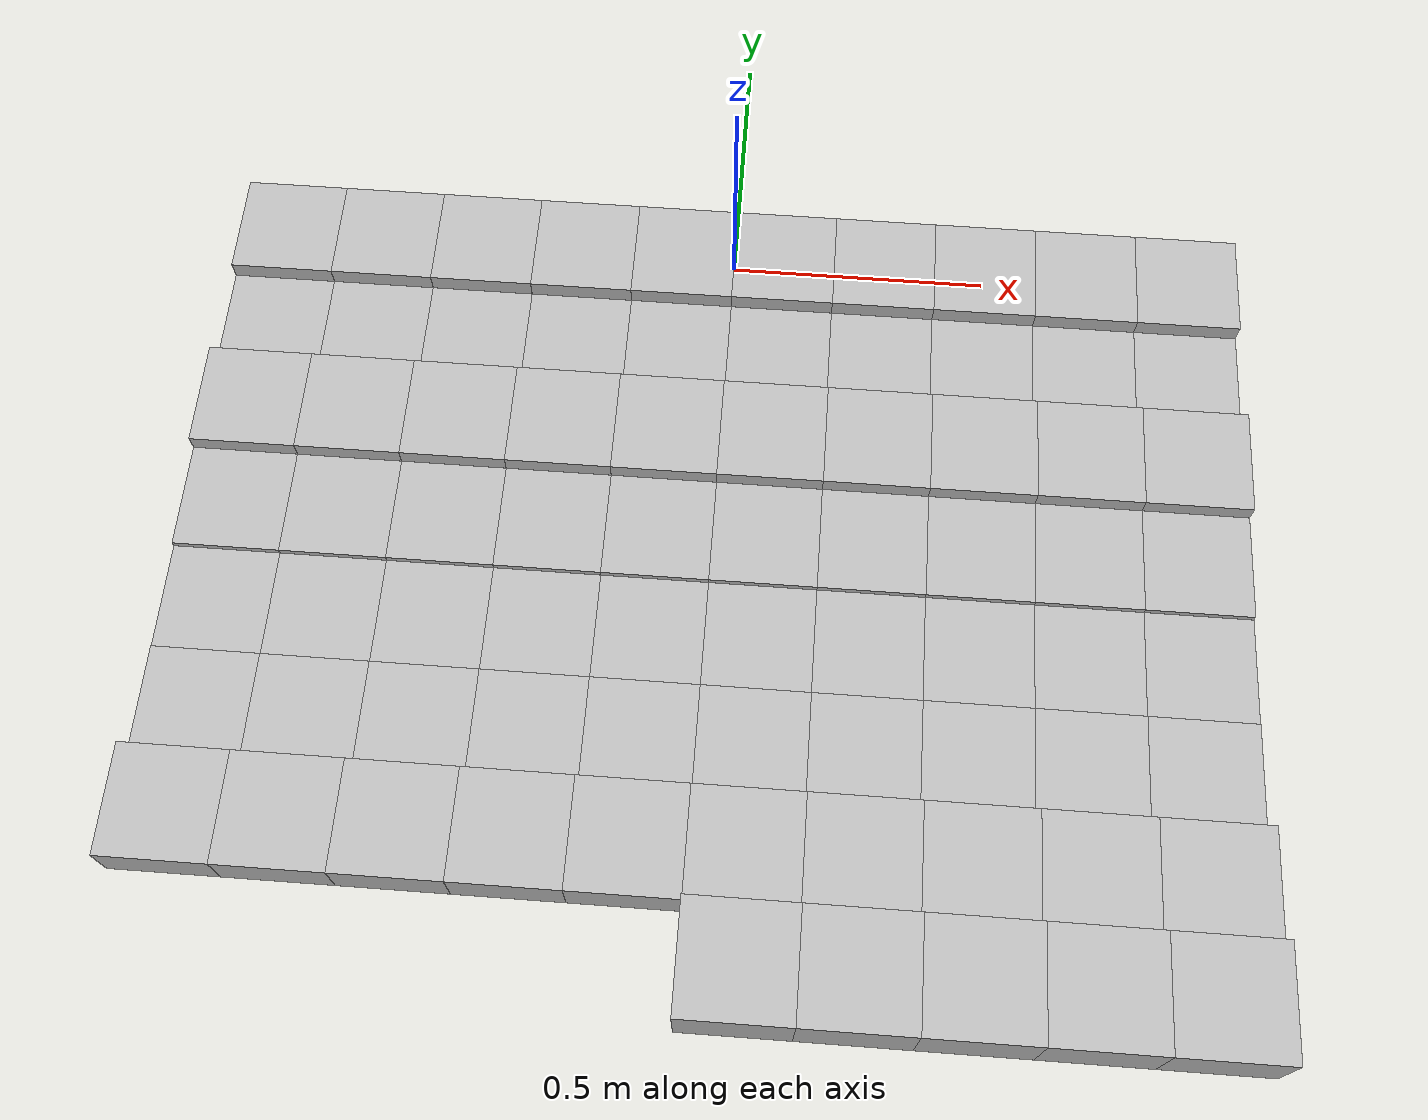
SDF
<sdf version="1.6">
 <model name="Terrain">
  <static>true</static>
  <link name="box_0_0">
   <pose>-0.9 0.0 0.0292652632221 0 0 0</pose>
   <inertial>
    <mass>1.0</mass>
    <inertia><ixx>0.0</ixx><ixy>0.0</ixy><ixz>0.0</ixz><iyy>0.0</iyy><iyz>0.0</iyz><izz>0.0</izz></inertia>
   </inertial>
   <collision name="collision"><geometry><box><size>0.2 0.2 0.0585305264443</size></box></geometry></collision>
   <visual name="visual"><geometry><box><size>0.2 0.2 0.0585305264443</size></box></geometry></visual>
  </link>
  <link name="box_0_1">
   <pose>-0.7 0.0 0.0292652632221 0 0 0</pose>
   <inertial>
    <mass>1.0</mass>
    <inertia><ixx>0.0</ixx><ixy>0.0</ixy><ixz>0.0</ixz><iyy>0.0</iyy><iyz>0.0</iyz><izz>0.0</izz></inertia>
   </inertial>
   <collision name="collision"><geometry><box><size>0.2 0.2 0.0585305264443</size></box></geometry></collision>
   <visual name="visual"><geometry><box><size>0.2 0.2 0.0585305264443</size></box></geometry></visual>
  </link>
  <link name="box_0_2">
   <pose>-0.5 0.0 0.0292652632221 0 0 0</pose>
   <inertial>
    <mass>1.0</mass>
    <inertia><ixx>0.0</ixx><ixy>0.0</ixy><ixz>0.0</ixz><iyy>0.0</iyy><iyz>0.0</iyz><izz>0.0</izz></inertia>
   </inertial>
   <collision name="collision"><geometry><box><size>0.2 0.2 0.0585305264443</size></box></geometry></collision>
   <visual name="visual"><geometry><box><size>0.2 0.2 0.0585305264443</size></box></geometry></visual>
  </link>
  <link name="box_0_3">
   <pose>-0.3 0.0 0.0292652632221 0 0 0</pose>
   <inertial>
    <mass>1.0</mass>
    <inertia><ixx>0.0</ixx><ixy>0.0</ixy><ixz>0.0</ixz><iyy>0.0</iyy><iyz>0.0</iyz><izz>0.0</izz></inertia>
   </inertial>
   <collision name="collision"><geometry><box><size>0.2 0.2 0.0585305264443</size></box></geometry></collision>
   <visual name="visual"><geometry><box><size>0.2 0.2 0.0585305264443</size></box></geometry></visual>
  </link>
  <link name="box_0_4">
   <pose>-0.1 0.0 0.0292652632221 0 0 0</pose>
   <inertial>
    <mass>1.0</mass>
    <inertia><ixx>0.0</ixx><ixy>0.0</ixy><ixz>0.0</ixz><iyy>0.0</iyy><iyz>0.0</iyz><izz>0.0</izz></inertia>
   </inertial>
   <collision name="collision"><geometry><box><size>0.2 0.2 0.0585305264443</size></box></geometry></collision>
   <visual name="visual"><geometry><box><size>0.2 0.2 0.0585305264443</size></box></geometry></visual>
  </link>
  <link name="box_0_5">
   <pose>0.1 0.0 0.0292652632221 0 0 0</pose>
   <inertial>
    <mass>1.0</mass>
    <inertia><ixx>0.0</ixx><ixy>0.0</ixy><ixz>0.0</ixz><iyy>0.0</iyy><iyz>0.0</iyz><izz>0.0</izz></inertia>
   </inertial>
   <collision name="collision"><geometry><box><size>0.2 0.2 0.0585305264443</size></box></geometry></collision>
   <visual name="visual"><geometry><box><size>0.2 0.2 0.0585305264443</size></box></geometry></visual>
  </link>
  <link name="box_0_6">
   <pose>0.3 0.0 0.0292652632221 0 0 0</pose>
   <inertial>
    <mass>1.0</mass>
    <inertia><ixx>0.0</ixx><ixy>0.0</ixy><ixz>0.0</ixz><iyy>0.0</iyy><iyz>0.0</iyz><izz>0.0</izz></inertia>
   </inertial>
   <collision name="collision"><geometry><box><size>0.2 0.2 0.0585305264443</size></box></geometry></collision>
   <visual name="visual"><geometry><box><size>0.2 0.2 0.0585305264443</size></box></geometry></visual>
  </link>
  <link name="box_0_7">
   <pose>0.5 0.0 0.0292652632221 0 0 0</pose>
   <inertial>
    <mass>1.0</mass>
    <inertia><ixx>0.0</ixx><ixy>0.0</ixy><ixz>0.0</ixz><iyy>0.0</iyy><iyz>0.0</iyz><izz>0.0</izz></inertia>
   </inertial>
   <collision name="collision"><geometry><box><size>0.2 0.2 0.0585305264443</size></box></geometry></collision>
   <visual name="visual"><geometry><box><size>0.2 0.2 0.0585305264443</size></box></geometry></visual>
  </link>
  <link name="box_0_8">
   <pose>0.7 0.0 0.0292652632221 0 0 0</pose>
   <inertial>
    <mass>1.0</mass>
    <inertia><ixx>0.0</ixx><ixy>0.0</ixy><ixz>0.0</ixz><iyy>0.0</iyy><iyz>0.0</iyz><izz>0.0</izz></inertia>
   </inertial>
   <collision name="collision"><geometry><box><size>0.2 0.2 0.0585305264443</size></box></geometry></collision>
   <visual name="visual"><geometry><box><size>0.2 0.2 0.0585305264443</size></box></geometry></visual>
  </link>
  <link name="box_0_9">
   <pose>0.9 0.0 0.0292652632221 0 0 0</pose>
   <inertial>
    <mass>1.0</mass>
    <inertia><ixx>0.0</ixx><ixy>0.0</ixy><ixz>0.0</ixz><iyy>0.0</iyy><iyz>0.0</iyz><izz>0.0</izz></inertia>
   </inertial>
   <collision name="collision"><geometry><box><size>0.2 0.2 0.0585305264443</size></box></geometry></collision>
   <visual name="visual"><geometry><box><size>0.2 0.2 0.0585305264443</size></box></geometry></visual>
  </link>
  <link name="box_1_0">
   <pose>-0.9 -0.2 0.0103565655767 0 0 0</pose>
   <inertial>
    <mass>1.0</mass>
    <inertia><ixx>0.0</ixx><ixy>0.0</ixy><ixz>0.0</ixz><iyy>0.0</iyy><iyz>0.0</iyz><izz>0.0</izz></inertia>
   </inertial>
   <collision name="collision"><geometry><box><size>0.2 0.2 0.0207131311533</size></box></geometry></collision>
   <visual name="visual"><geometry><box><size>0.2 0.2 0.0207131311533</size></box></geometry></visual>
  </link>
  <link name="box_1_1">
   <pose>-0.7 -0.2 0.0103565655767 0 0 0</pose>
   <inertial>
    <mass>1.0</mass>
    <inertia><ixx>0.0</ixx><ixy>0.0</ixy><ixz>0.0</ixz><iyy>0.0</iyy><iyz>0.0</iyz><izz>0.0</izz></inertia>
   </inertial>
   <collision name="collision"><geometry><box><size>0.2 0.2 0.0207131311533</size></box></geometry></collision>
   <visual name="visual"><geometry><box><size>0.2 0.2 0.0207131311533</size></box></geometry></visual>
  </link>
  <link name="box_1_2">
   <pose>-0.5 -0.2 0.0103565655767 0 0 0</pose>
   <inertial>
    <mass>1.0</mass>
    <inertia><ixx>0.0</ixx><ixy>0.0</ixy><ixz>0.0</ixz><iyy>0.0</iyy><iyz>0.0</iyz><izz>0.0</izz></inertia>
   </inertial>
   <collision name="collision"><geometry><box><size>0.2 0.2 0.0207131311533</size></box></geometry></collision>
   <visual name="visual"><geometry><box><size>0.2 0.2 0.0207131311533</size></box></geometry></visual>
  </link>
  <link name="box_1_3">
   <pose>-0.3 -0.2 0.0103565655767 0 0 0</pose>
   <inertial>
    <mass>1.0</mass>
    <inertia><ixx>0.0</ixx><ixy>0.0</ixy><ixz>0.0</ixz><iyy>0.0</iyy><iyz>0.0</iyz><izz>0.0</izz></inertia>
   </inertial>
   <collision name="collision"><geometry><box><size>0.2 0.2 0.0207131311533</size></box></geometry></collision>
   <visual name="visual"><geometry><box><size>0.2 0.2 0.0207131311533</size></box></geometry></visual>
  </link>
  <link name="box_1_4">
   <pose>-0.1 -0.2 0.0103565655767 0 0 0</pose>
   <inertial>
    <mass>1.0</mass>
    <inertia><ixx>0.0</ixx><ixy>0.0</ixy><ixz>0.0</ixz><iyy>0.0</iyy><iyz>0.0</iyz><izz>0.0</izz></inertia>
   </inertial>
   <collision name="collision"><geometry><box><size>0.2 0.2 0.0207131311533</size></box></geometry></collision>
   <visual name="visual"><geometry><box><size>0.2 0.2 0.0207131311533</size></box></geometry></visual>
  </link>
  <link name="box_1_5">
   <pose>0.1 -0.2 0.0103565655767 0 0 0</pose>
   <inertial>
    <mass>1.0</mass>
    <inertia><ixx>0.0</ixx><ixy>0.0</ixy><ixz>0.0</ixz><iyy>0.0</iyy><iyz>0.0</iyz><izz>0.0</izz></inertia>
   </inertial>
   <collision name="collision"><geometry><box><size>0.2 0.2 0.0207131311533</size></box></geometry></collision>
   <visual name="visual"><geometry><box><size>0.2 0.2 0.0207131311533</size></box></geometry></visual>
  </link>
  <link name="box_1_6">
   <pose>0.3 -0.2 0.0103565655767 0 0 0</pose>
   <inertial>
    <mass>1.0</mass>
    <inertia><ixx>0.0</ixx><ixy>0.0</ixy><ixz>0.0</ixz><iyy>0.0</iyy><iyz>0.0</iyz><izz>0.0</izz></inertia>
   </inertial>
   <collision name="collision"><geometry><box><size>0.2 0.2 0.0207131311533</size></box></geometry></collision>
   <visual name="visual"><geometry><box><size>0.2 0.2 0.0207131311533</size></box></geometry></visual>
  </link>
  <link name="box_1_7">
   <pose>0.5 -0.2 0.0103565655767 0 0 0</pose>
   <inertial>
    <mass>1.0</mass>
    <inertia><ixx>0.0</ixx><ixy>0.0</ixy><ixz>0.0</ixz><iyy>0.0</iyy><iyz>0.0</iyz><izz>0.0</izz></inertia>
   </inertial>
   <collision name="collision"><geometry><box><size>0.2 0.2 0.0207131311533</size></box></geometry></collision>
   <visual name="visual"><geometry><box><size>0.2 0.2 0.0207131311533</size></box></geometry></visual>
  </link>
  <link name="box_1_8">
   <pose>0.7 -0.2 0.0103565655767 0 0 0</pose>
   <inertial>
    <mass>1.0</mass>
    <inertia><ixx>0.0</ixx><ixy>0.0</ixy><ixz>0.0</ixz><iyy>0.0</iyy><iyz>0.0</iyz><izz>0.0</izz></inertia>
   </inertial>
   <collision name="collision"><geometry><box><size>0.2 0.2 0.0207131311533</size></box></geometry></collision>
   <visual name="visual"><geometry><box><size>0.2 0.2 0.0207131311533</size></box></geometry></visual>
  </link>
  <link name="box_1_9">
   <pose>0.9 -0.2 0.0103565655767 0 0 0</pose>
   <inertial>
    <mass>1.0</mass>
    <inertia><ixx>0.0</ixx><ixy>0.0</ixy><ixz>0.0</ixz><iyy>0.0</iyy><iyz>0.0</iyz><izz>0.0</izz></inertia>
   </inertial>
   <collision name="collision"><geometry><box><size>0.2 0.2 0.0207131311533</size></box></geometry></collision>
   <visual name="visual"><geometry><box><size>0.2 0.2 0.0207131311533</size></box></geometry></visual>
  </link>
  <link name="box_2_0">
   <pose>-0.9 -0.4 0.0378009795882 0 0 0</pose>
   <inertial>
    <mass>1.0</mass>
    <inertia><ixx>0.0</ixx><ixy>0.0</ixy><ixz>0.0</ixz><iyy>0.0</iyy><iyz>0.0</iyz><izz>0.0</izz></inertia>
   </inertial>
   <collision name="collision"><geometry><box><size>0.2 0.2 0.0756019591763</size></box></geometry></collision>
   <visual name="visual"><geometry><box><size>0.2 0.2 0.0756019591763</size></box></geometry></visual>
  </link>
  <link name="box_2_1">
   <pose>-0.7 -0.4 0.0378009795882 0 0 0</pose>
   <inertial>
    <mass>1.0</mass>
    <inertia><ixx>0.0</ixx><ixy>0.0</ixy><ixz>0.0</ixz><iyy>0.0</iyy><iyz>0.0</iyz><izz>0.0</izz></inertia>
   </inertial>
   <collision name="collision"><geometry><box><size>0.2 0.2 0.0756019591763</size></box></geometry></collision>
   <visual name="visual"><geometry><box><size>0.2 0.2 0.0756019591763</size></box></geometry></visual>
  </link>
  <link name="box_2_2">
   <pose>-0.5 -0.4 0.0378009795882 0 0 0</pose>
   <inertial>
    <mass>1.0</mass>
    <inertia><ixx>0.0</ixx><ixy>0.0</ixy><ixz>0.0</ixz><iyy>0.0</iyy><iyz>0.0</iyz><izz>0.0</izz></inertia>
   </inertial>
   <collision name="collision"><geometry><box><size>0.2 0.2 0.0756019591763</size></box></geometry></collision>
   <visual name="visual"><geometry><box><size>0.2 0.2 0.0756019591763</size></box></geometry></visual>
  </link>
  <link name="box_2_3">
   <pose>-0.3 -0.4 0.0378009795882 0 0 0</pose>
   <inertial>
    <mass>1.0</mass>
    <inertia><ixx>0.0</ixx><ixy>0.0</ixy><ixz>0.0</ixz><iyy>0.0</iyy><iyz>0.0</iyz><izz>0.0</izz></inertia>
   </inertial>
   <collision name="collision"><geometry><box><size>0.2 0.2 0.0756019591763</size></box></geometry></collision>
   <visual name="visual"><geometry><box><size>0.2 0.2 0.0756019591763</size></box></geometry></visual>
  </link>
  <link name="box_2_4">
   <pose>-0.1 -0.4 0.0378009795882 0 0 0</pose>
   <inertial>
    <mass>1.0</mass>
    <inertia><ixx>0.0</ixx><ixy>0.0</ixy><ixz>0.0</ixz><iyy>0.0</iyy><iyz>0.0</iyz><izz>0.0</izz></inertia>
   </inertial>
   <collision name="collision"><geometry><box><size>0.2 0.2 0.0756019591763</size></box></geometry></collision>
   <visual name="visual"><geometry><box><size>0.2 0.2 0.0756019591763</size></box></geometry></visual>
  </link>
  <link name="box_2_5">
   <pose>0.1 -0.4 0.0378009795882 0 0 0</pose>
   <inertial>
    <mass>1.0</mass>
    <inertia><ixx>0.0</ixx><ixy>0.0</ixy><ixz>0.0</ixz><iyy>0.0</iyy><iyz>0.0</iyz><izz>0.0</izz></inertia>
   </inertial>
   <collision name="collision"><geometry><box><size>0.2 0.2 0.0756019591763</size></box></geometry></collision>
   <visual name="visual"><geometry><box><size>0.2 0.2 0.0756019591763</size></box></geometry></visual>
  </link>
  <link name="box_2_6">
   <pose>0.3 -0.4 0.0378009795882 0 0 0</pose>
   <inertial>
    <mass>1.0</mass>
    <inertia><ixx>0.0</ixx><ixy>0.0</ixy><ixz>0.0</ixz><iyy>0.0</iyy><iyz>0.0</iyz><izz>0.0</izz></inertia>
   </inertial>
   <collision name="collision"><geometry><box><size>0.2 0.2 0.0756019591763</size></box></geometry></collision>
   <visual name="visual"><geometry><box><size>0.2 0.2 0.0756019591763</size></box></geometry></visual>
  </link>
  <link name="box_2_7">
   <pose>0.5 -0.4 0.0378009795882 0 0 0</pose>
   <inertial>
    <mass>1.0</mass>
    <inertia><ixx>0.0</ixx><ixy>0.0</ixy><ixz>0.0</ixz><iyy>0.0</iyy><iyz>0.0</iyz><izz>0.0</izz></inertia>
   </inertial>
   <collision name="collision"><geometry><box><size>0.2 0.2 0.0756019591763</size></box></geometry></collision>
   <visual name="visual"><geometry><box><size>0.2 0.2 0.0756019591763</size></box></geometry></visual>
  </link>
  <link name="box_2_8">
   <pose>0.7 -0.4 0.0378009795882 0 0 0</pose>
   <inertial>
    <mass>1.0</mass>
    <inertia><ixx>0.0</ixx><ixy>0.0</ixy><ixz>0.0</ixz><iyy>0.0</iyy><iyz>0.0</iyz><izz>0.0</izz></inertia>
   </inertial>
   <collision name="collision"><geometry><box><size>0.2 0.2 0.0756019591763</size></box></geometry></collision>
   <visual name="visual"><geometry><box><size>0.2 0.2 0.0756019591763</size></box></geometry></visual>
  </link>
  <link name="box_2_9">
   <pose>0.9 -0.4 0.0378009795882 0 0 0</pose>
   <inertial>
    <mass>1.0</mass>
    <inertia><ixx>0.0</ixx><ixy>0.0</ixy><ixz>0.0</ixz><iyy>0.0</iyy><iyz>0.0</iyz><izz>0.0</izz></inertia>
   </inertial>
   <collision name="collision"><geometry><box><size>0.2 0.2 0.0756019591763</size></box></geometry></collision>
   <visual name="visual"><geometry><box><size>0.2 0.2 0.0756019591763</size></box></geometry></visual>
  </link>
  <link name="box_3_0">
   <pose>-0.9 -0.6 0.020020709092 0 0 0</pose>
   <inertial>
    <mass>1.0</mass>
    <inertia><ixx>0.0</ixx><ixy>0.0</ixy><ixz>0.0</ixz><iyy>0.0</iyy><iyz>0.0</iyz><izz>0.0</izz></inertia>
   </inertial>
   <collision name="collision"><geometry><box><size>0.2 0.2 0.040041418184</size></box></geometry></collision>
   <visual name="visual"><geometry><box><size>0.2 0.2 0.040041418184</size></box></geometry></visual>
  </link>
  <link name="box_3_1">
   <pose>-0.7 -0.6 0.020020709092 0 0 0</pose>
   <inertial>
    <mass>1.0</mass>
    <inertia><ixx>0.0</ixx><ixy>0.0</ixy><ixz>0.0</ixz><iyy>0.0</iyy><iyz>0.0</iyz><izz>0.0</izz></inertia>
   </inertial>
   <collision name="collision"><geometry><box><size>0.2 0.2 0.040041418184</size></box></geometry></collision>
   <visual name="visual"><geometry><box><size>0.2 0.2 0.040041418184</size></box></geometry></visual>
  </link>
  <link name="box_3_2">
   <pose>-0.5 -0.6 0.020020709092 0 0 0</pose>
   <inertial>
    <mass>1.0</mass>
    <inertia><ixx>0.0</ixx><ixy>0.0</ixy><ixz>0.0</ixz><iyy>0.0</iyy><iyz>0.0</iyz><izz>0.0</izz></inertia>
   </inertial>
   <collision name="collision"><geometry><box><size>0.2 0.2 0.040041418184</size></box></geometry></collision>
   <visual name="visual"><geometry><box><size>0.2 0.2 0.040041418184</size></box></geometry></visual>
  </link>
  <link name="box_3_3">
   <pose>-0.3 -0.6 0.020020709092 0 0 0</pose>
   <inertial>
    <mass>1.0</mass>
    <inertia><ixx>0.0</ixx><ixy>0.0</ixy><ixz>0.0</ixz><iyy>0.0</iyy><iyz>0.0</iyz><izz>0.0</izz></inertia>
   </inertial>
   <collision name="collision"><geometry><box><size>0.2 0.2 0.040041418184</size></box></geometry></collision>
   <visual name="visual"><geometry><box><size>0.2 0.2 0.040041418184</size></box></geometry></visual>
  </link>
  <link name="box_3_4">
   <pose>-0.1 -0.6 0.020020709092 0 0 0</pose>
   <inertial>
    <mass>1.0</mass>
    <inertia><ixx>0.0</ixx><ixy>0.0</ixy><ixz>0.0</ixz><iyy>0.0</iyy><iyz>0.0</iyz><izz>0.0</izz></inertia>
   </inertial>
   <collision name="collision"><geometry><box><size>0.2 0.2 0.040041418184</size></box></geometry></collision>
   <visual name="visual"><geometry><box><size>0.2 0.2 0.040041418184</size></box></geometry></visual>
  </link>
  <link name="box_3_5">
   <pose>0.1 -0.6 0.020020709092 0 0 0</pose>
   <inertial>
    <mass>1.0</mass>
    <inertia><ixx>0.0</ixx><ixy>0.0</ixy><ixz>0.0</ixz><iyy>0.0</iyy><iyz>0.0</iyz><izz>0.0</izz></inertia>
   </inertial>
   <collision name="collision"><geometry><box><size>0.2 0.2 0.040041418184</size></box></geometry></collision>
   <visual name="visual"><geometry><box><size>0.2 0.2 0.040041418184</size></box></geometry></visual>
  </link>
  <link name="box_3_6">
   <pose>0.3 -0.6 0.020020709092 0 0 0</pose>
   <inertial>
    <mass>1.0</mass>
    <inertia><ixx>0.0</ixx><ixy>0.0</ixy><ixz>0.0</ixz><iyy>0.0</iyy><iyz>0.0</iyz><izz>0.0</izz></inertia>
   </inertial>
   <collision name="collision"><geometry><box><size>0.2 0.2 0.040041418184</size></box></geometry></collision>
   <visual name="visual"><geometry><box><size>0.2 0.2 0.040041418184</size></box></geometry></visual>
  </link>
  <link name="box_3_7">
   <pose>0.5 -0.6 0.020020709092 0 0 0</pose>
   <inertial>
    <mass>1.0</mass>
    <inertia><ixx>0.0</ixx><ixy>0.0</ixy><ixz>0.0</ixz><iyy>0.0</iyy><iyz>0.0</iyz><izz>0.0</izz></inertia>
   </inertial>
   <collision name="collision"><geometry><box><size>0.2 0.2 0.040041418184</size></box></geometry></collision>
   <visual name="visual"><geometry><box><size>0.2 0.2 0.040041418184</size></box></geometry></visual>
  </link>
  <link name="box_3_8">
   <pose>0.7 -0.6 0.020020709092 0 0 0</pose>
   <inertial>
    <mass>1.0</mass>
    <inertia><ixx>0.0</ixx><ixy>0.0</ixy><ixz>0.0</ixz><iyy>0.0</iyy><iyz>0.0</iyz><izz>0.0</izz></inertia>
   </inertial>
   <collision name="collision"><geometry><box><size>0.2 0.2 0.040041418184</size></box></geometry></collision>
   <visual name="visual"><geometry><box><size>0.2 0.2 0.040041418184</size></box></geometry></visual>
  </link>
  <link name="box_3_9">
   <pose>0.9 -0.6 0.020020709092 0 0 0</pose>
   <inertial>
    <mass>1.0</mass>
    <inertia><ixx>0.0</ixx><ixy>0.0</ixy><ixz>0.0</ixz><iyy>0.0</iyy><iyz>0.0</iyz><izz>0.0</izz></inertia>
   </inertial>
   <collision name="collision"><geometry><box><size>0.2 0.2 0.040041418184</size></box></geometry></collision>
   <visual name="visual"><geometry><box><size>0.2 0.2 0.040041418184</size></box></geometry></visual>
  </link>
  <link name="box_4_0">
   <pose>-0.9 -0.8 0.0135634962556 0 0 0</pose>
   <inertial>
    <mass>1.0</mass>
    <inertia><ixx>0.0</ixx><ixy>0.0</ixy><ixz>0.0</ixz><iyy>0.0</iyy><iyz>0.0</iyz><izz>0.0</izz></inertia>
   </inertial>
   <collision name="collision"><geometry><box><size>0.2 0.2 0.0271269925111</size></box></geometry></collision>
   <visual name="visual"><geometry><box><size>0.2 0.2 0.0271269925111</size></box></geometry></visual>
  </link>
  <link name="box_4_1">
   <pose>-0.7 -0.8 0.0135634962556 0 0 0</pose>
   <inertial>
    <mass>1.0</mass>
    <inertia><ixx>0.0</ixx><ixy>0.0</ixy><ixz>0.0</ixz><iyy>0.0</iyy><iyz>0.0</iyz><izz>0.0</izz></inertia>
   </inertial>
   <collision name="collision"><geometry><box><size>0.2 0.2 0.0271269925111</size></box></geometry></collision>
   <visual name="visual"><geometry><box><size>0.2 0.2 0.0271269925111</size></box></geometry></visual>
  </link>
  <link name="box_4_2">
   <pose>-0.5 -0.8 0.0135634962556 0 0 0</pose>
   <inertial>
    <mass>1.0</mass>
    <inertia><ixx>0.0</ixx><ixy>0.0</ixy><ixz>0.0</ixz><iyy>0.0</iyy><iyz>0.0</iyz><izz>0.0</izz></inertia>
   </inertial>
   <collision name="collision"><geometry><box><size>0.2 0.2 0.0271269925111</size></box></geometry></collision>
   <visual name="visual"><geometry><box><size>0.2 0.2 0.0271269925111</size></box></geometry></visual>
  </link>
  <link name="box_4_3">
   <pose>-0.3 -0.8 0.0135634962556 0 0 0</pose>
   <inertial>
    <mass>1.0</mass>
    <inertia><ixx>0.0</ixx><ixy>0.0</ixy><ixz>0.0</ixz><iyy>0.0</iyy><iyz>0.0</iyz><izz>0.0</izz></inertia>
   </inertial>
   <collision name="collision"><geometry><box><size>0.2 0.2 0.0271269925111</size></box></geometry></collision>
   <visual name="visual"><geometry><box><size>0.2 0.2 0.0271269925111</size></box></geometry></visual>
  </link>
  <link name="box_4_4">
   <pose>-0.1 -0.8 0.0135634962556 0 0 0</pose>
   <inertial>
    <mass>1.0</mass>
    <inertia><ixx>0.0</ixx><ixy>0.0</ixy><ixz>0.0</ixz><iyy>0.0</iyy><iyz>0.0</iyz><izz>0.0</izz></inertia>
   </inertial>
   <collision name="collision"><geometry><box><size>0.2 0.2 0.0271269925111</size></box></geometry></collision>
   <visual name="visual"><geometry><box><size>0.2 0.2 0.0271269925111</size></box></geometry></visual>
  </link>
  <link name="box_4_5">
   <pose>0.1 -0.8 0.0135634962556 0 0 0</pose>
   <inertial>
    <mass>1.0</mass>
    <inertia><ixx>0.0</ixx><ixy>0.0</ixy><ixz>0.0</ixz><iyy>0.0</iyy><iyz>0.0</iyz><izz>0.0</izz></inertia>
   </inertial>
   <collision name="collision"><geometry><box><size>0.2 0.2 0.0271269925111</size></box></geometry></collision>
   <visual name="visual"><geometry><box><size>0.2 0.2 0.0271269925111</size></box></geometry></visual>
  </link>
  <link name="box_4_6">
   <pose>0.3 -0.8 0.0135634962556 0 0 0</pose>
   <inertial>
    <mass>1.0</mass>
    <inertia><ixx>0.0</ixx><ixy>0.0</ixy><ixz>0.0</ixz><iyy>0.0</iyy><iyz>0.0</iyz><izz>0.0</izz></inertia>
   </inertial>
   <collision name="collision"><geometry><box><size>0.2 0.2 0.0271269925111</size></box></geometry></collision>
   <visual name="visual"><geometry><box><size>0.2 0.2 0.0271269925111</size></box></geometry></visual>
  </link>
  <link name="box_4_7">
   <pose>0.5 -0.8 0.0135634962556 0 0 0</pose>
   <inertial>
    <mass>1.0</mass>
    <inertia><ixx>0.0</ixx><ixy>0.0</ixy><ixz>0.0</ixz><iyy>0.0</iyy><iyz>0.0</iyz><izz>0.0</izz></inertia>
   </inertial>
   <collision name="collision"><geometry><box><size>0.2 0.2 0.0271269925111</size></box></geometry></collision>
   <visual name="visual"><geometry><box><size>0.2 0.2 0.0271269925111</size></box></geometry></visual>
  </link>
  <link name="box_4_8">
   <pose>0.7 -0.8 0.0135634962556 0 0 0</pose>
   <inertial>
    <mass>1.0</mass>
    <inertia><ixx>0.0</ixx><ixy>0.0</ixy><ixz>0.0</ixz><iyy>0.0</iyy><iyz>0.0</iyz><izz>0.0</izz></inertia>
   </inertial>
   <collision name="collision"><geometry><box><size>0.2 0.2 0.0271269925111</size></box></geometry></collision>
   <visual name="visual"><geometry><box><size>0.2 0.2 0.0271269925111</size></box></geometry></visual>
  </link>
  <link name="box_4_9">
   <pose>0.9 -0.8 0.0135634962556 0 0 0</pose>
   <inertial>
    <mass>1.0</mass>
    <inertia><ixx>0.0</ixx><ixy>0.0</ixy><ixz>0.0</ixz><iyy>0.0</iyy><iyz>0.0</iyz><izz>0.0</izz></inertia>
   </inertial>
   <collision name="collision"><geometry><box><size>0.2 0.2 0.0271269925111</size></box></geometry></collision>
   <visual name="visual"><geometry><box><size>0.2 0.2 0.0271269925111</size></box></geometry></visual>
  </link>
  <link name="box_5_0">
   <pose>-0.9 -1.0 0.015057297449 0 0 0</pose>
   <inertial>
    <mass>1.0</mass>
    <inertia><ixx>0.0</ixx><ixy>0.0</ixy><ixz>0.0</ixz><iyy>0.0</iyy><iyz>0.0</iyz><izz>0.0</izz></inertia>
   </inertial>
   <collision name="collision"><geometry><box><size>0.2 0.2 0.030114594898</size></box></geometry></collision>
   <visual name="visual"><geometry><box><size>0.2 0.2 0.030114594898</size></box></geometry></visual>
  </link>
  <link name="box_5_1">
   <pose>-0.7 -1.0 0.015057297449 0 0 0</pose>
   <inertial>
    <mass>1.0</mass>
    <inertia><ixx>0.0</ixx><ixy>0.0</ixy><ixz>0.0</ixz><iyy>0.0</iyy><iyz>0.0</iyz><izz>0.0</izz></inertia>
   </inertial>
   <collision name="collision"><geometry><box><size>0.2 0.2 0.030114594898</size></box></geometry></collision>
   <visual name="visual"><geometry><box><size>0.2 0.2 0.030114594898</size></box></geometry></visual>
  </link>
  <link name="box_5_2">
   <pose>-0.5 -1.0 0.015057297449 0 0 0</pose>
   <inertial>
    <mass>1.0</mass>
    <inertia><ixx>0.0</ixx><ixy>0.0</ixy><ixz>0.0</ixz><iyy>0.0</iyy><iyz>0.0</iyz><izz>0.0</izz></inertia>
   </inertial>
   <collision name="collision"><geometry><box><size>0.2 0.2 0.030114594898</size></box></geometry></collision>
   <visual name="visual"><geometry><box><size>0.2 0.2 0.030114594898</size></box></geometry></visual>
  </link>
  <link name="box_5_3">
   <pose>-0.3 -1.0 0.015057297449 0 0 0</pose>
   <inertial>
    <mass>1.0</mass>
    <inertia><ixx>0.0</ixx><ixy>0.0</ixy><ixz>0.0</ixz><iyy>0.0</iyy><iyz>0.0</iyz><izz>0.0</izz></inertia>
   </inertial>
   <collision name="collision"><geometry><box><size>0.2 0.2 0.030114594898</size></box></geometry></collision>
   <visual name="visual"><geometry><box><size>0.2 0.2 0.030114594898</size></box></geometry></visual>
  </link>
  <link name="box_5_4">
   <pose>-0.1 -1.0 0.015057297449 0 0 0</pose>
   <inertial>
    <mass>1.0</mass>
    <inertia><ixx>0.0</ixx><ixy>0.0</ixy><ixz>0.0</ixz><iyy>0.0</iyy><iyz>0.0</iyz><izz>0.0</izz></inertia>
   </inertial>
   <collision name="collision"><geometry><box><size>0.2 0.2 0.030114594898</size></box></geometry></collision>
   <visual name="visual"><geometry><box><size>0.2 0.2 0.030114594898</size></box></geometry></visual>
  </link>
  <link name="box_5_5">
   <pose>0.1 -1.0 0.015057297449 0 0 0</pose>
   <inertial>
    <mass>1.0</mass>
    <inertia><ixx>0.0</ixx><ixy>0.0</ixy><ixz>0.0</ixz><iyy>0.0</iyy><iyz>0.0</iyz><izz>0.0</izz></inertia>
   </inertial>
   <collision name="collision"><geometry><box><size>0.2 0.2 0.030114594898</size></box></geometry></collision>
   <visual name="visual"><geometry><box><size>0.2 0.2 0.030114594898</size></box></geometry></visual>
  </link>
  <link name="box_5_6">
   <pose>0.3 -1.0 0.015057297449 0 0 0</pose>
   <inertial>
    <mass>1.0</mass>
    <inertia><ixx>0.0</ixx><ixy>0.0</ixy><ixz>0.0</ixz><iyy>0.0</iyy><iyz>0.0</iyz><izz>0.0</izz></inertia>
   </inertial>
   <collision name="collision"><geometry><box><size>0.2 0.2 0.030114594898</size></box></geometry></collision>
   <visual name="visual"><geometry><box><size>0.2 0.2 0.030114594898</size></box></geometry></visual>
  </link>
  <link name="box_5_7">
   <pose>0.5 -1.0 0.015057297449 0 0 0</pose>
   <inertial>
    <mass>1.0</mass>
    <inertia><ixx>0.0</ixx><ixy>0.0</ixy><ixz>0.0</ixz><iyy>0.0</iyy><iyz>0.0</iyz><izz>0.0</izz></inertia>
   </inertial>
   <collision name="collision"><geometry><box><size>0.2 0.2 0.030114594898</size></box></geometry></collision>
   <visual name="visual"><geometry><box><size>0.2 0.2 0.030114594898</size></box></geometry></visual>
  </link>
  <link name="box_5_8">
   <pose>0.7 -1.0 0.015057297449 0 0 0</pose>
   <inertial>
    <mass>1.0</mass>
    <inertia><ixx>0.0</ixx><ixy>0.0</ixy><ixz>0.0</ixz><iyy>0.0</iyy><iyz>0.0</iyz><izz>0.0</izz></inertia>
   </inertial>
   <collision name="collision"><geometry><box><size>0.2 0.2 0.030114594898</size></box></geometry></collision>
   <visual name="visual"><geometry><box><size>0.2 0.2 0.030114594898</size></box></geometry></visual>
  </link>
  <link name="box_5_9">
   <pose>0.9 -1.0 0.015057297449 0 0 0</pose>
   <inertial>
    <mass>1.0</mass>
    <inertia><ixx>0.0</ixx><ixy>0.0</ixy><ixz>0.0</ixz><iyy>0.0</iyy><iyz>0.0</iyz><izz>0.0</izz></inertia>
   </inertial>
   <collision name="collision"><geometry><box><size>0.2 0.2 0.030114594898</size></box></geometry></collision>
   <visual name="visual"><geometry><box><size>0.2 0.2 0.030114594898</size></box></geometry></visual>
  </link>
  <link name="box_6_0">
   <pose>-0.9 -1.2 0.0458618885374 0 0 0</pose>
   <inertial>
    <mass>1.0</mass>
    <inertia><ixx>0.0</ixx><ixy>0.0</ixy><ixz>0.0</ixz><iyy>0.0</iyy><iyz>0.0</iyz><izz>0.0</izz></inertia>
   </inertial>
   <collision name="collision"><geometry><box><size>0.2 0.2 0.0917237770747</size></box></geometry></collision>
   <visual name="visual"><geometry><box><size>0.2 0.2 0.0917237770747</size></box></geometry></visual>
  </link>
  <link name="box_6_1">
   <pose>-0.7 -1.2 0.0458618885374 0 0 0</pose>
   <inertial>
    <mass>1.0</mass>
    <inertia><ixx>0.0</ixx><ixy>0.0</ixy><ixz>0.0</ixz><iyy>0.0</iyy><iyz>0.0</iyz><izz>0.0</izz></inertia>
   </inertial>
   <collision name="collision"><geometry><box><size>0.2 0.2 0.0917237770747</size></box></geometry></collision>
   <visual name="visual"><geometry><box><size>0.2 0.2 0.0917237770747</size></box></geometry></visual>
  </link>
  <link name="box_6_2">
   <pose>-0.5 -1.2 0.0458618885374 0 0 0</pose>
   <inertial>
    <mass>1.0</mass>
    <inertia><ixx>0.0</ixx><ixy>0.0</ixy><ixz>0.0</ixz><iyy>0.0</iyy><iyz>0.0</iyz><izz>0.0</izz></inertia>
   </inertial>
   <collision name="collision"><geometry><box><size>0.2 0.2 0.0917237770747</size></box></geometry></collision>
   <visual name="visual"><geometry><box><size>0.2 0.2 0.0917237770747</size></box></geometry></visual>
  </link>
  <link name="box_6_3">
   <pose>-0.3 -1.2 0.0458618885374 0 0 0</pose>
   <inertial>
    <mass>1.0</mass>
    <inertia><ixx>0.0</ixx><ixy>0.0</ixy><ixz>0.0</ixz><iyy>0.0</iyy><iyz>0.0</iyz><izz>0.0</izz></inertia>
   </inertial>
   <collision name="collision"><geometry><box><size>0.2 0.2 0.0917237770747</size></box></geometry></collision>
   <visual name="visual"><geometry><box><size>0.2 0.2 0.0917237770747</size></box></geometry></visual>
  </link>
  <link name="box_6_4">
   <pose>-0.1 -1.2 0.0458618885374 0 0 0</pose>
   <inertial>
    <mass>1.0</mass>
    <inertia><ixx>0.0</ixx><ixy>0.0</ixy><ixz>0.0</ixz><iyy>0.0</iyy><iyz>0.0</iyz><izz>0.0</izz></inertia>
   </inertial>
   <collision name="collision"><geometry><box><size>0.2 0.2 0.0917237770747</size></box></geometry></collision>
   <visual name="visual"><geometry><box><size>0.2 0.2 0.0917237770747</size></box></geometry></visual>
  </link>
  <link name="box_6_5">
   <pose>0.1 -1.2 0.0458618885374 0 0 0</pose>
   <inertial>
    <mass>1.0</mass>
    <inertia><ixx>0.0</ixx><ixy>0.0</ixy><ixz>0.0</ixz><iyy>0.0</iyy><iyz>0.0</iyz><izz>0.0</izz></inertia>
   </inertial>
   <collision name="collision"><geometry><box><size>0.2 0.2 0.0917237770747</size></box></geometry></collision>
   <visual name="visual"><geometry><box><size>0.2 0.2 0.0917237770747</size></box></geometry></visual>
  </link>
  <link name="box_6_6">
   <pose>0.3 -1.2 0.0458618885374 0 0 0</pose>
   <inertial>
    <mass>1.0</mass>
    <inertia><ixx>0.0</ixx><ixy>0.0</ixy><ixz>0.0</ixz><iyy>0.0</iyy><iyz>0.0</iyz><izz>0.0</izz></inertia>
   </inertial>
   <collision name="collision"><geometry><box><size>0.2 0.2 0.0917237770747</size></box></geometry></collision>
   <visual name="visual"><geometry><box><size>0.2 0.2 0.0917237770747</size></box></geometry></visual>
  </link>
  <link name="box_6_7">
   <pose>0.5 -1.2 0.0458618885374 0 0 0</pose>
   <inertial>
    <mass>1.0</mass>
    <inertia><ixx>0.0</ixx><ixy>0.0</ixy><ixz>0.0</ixz><iyy>0.0</iyy><iyz>0.0</iyz><izz>0.0</izz></inertia>
   </inertial>
   <collision name="collision"><geometry><box><size>0.2 0.2 0.0917237770747</size></box></geometry></collision>
   <visual name="visual"><geometry><box><size>0.2 0.2 0.0917237770747</size></box></geometry></visual>
  </link>
  <link name="box_6_8">
   <pose>0.7 -1.2 0.0458618885374 0 0 0</pose>
   <inertial>
    <mass>1.0</mass>
    <inertia><ixx>0.0</ixx><ixy>0.0</ixy><ixz>0.0</ixz><iyy>0.0</iyy><iyz>0.0</iyz><izz>0.0</izz></inertia>
   </inertial>
   <collision name="collision"><geometry><box><size>0.2 0.2 0.0917237770747</size></box></geometry></collision>
   <visual name="visual"><geometry><box><size>0.2 0.2 0.0917237770747</size></box></geometry></visual>
  </link>
  <link name="box_6_9">
   <pose>0.9 -1.2 0.0458618885374 0 0 0</pose>
   <inertial>
    <mass>1.0</mass>
    <inertia><ixx>0.0</ixx><ixy>0.0</ixy><ixz>0.0</ixz><iyy>0.0</iyy><iyz>0.0</iyz><izz>0.0</izz></inertia>
   </inertial>
   <collision name="collision"><geometry><box><size>0.2 0.2 0.0917237770747</size></box></geometry></collision>
   <visual name="visual"><geometry><box><size>0.2 0.2 0.0917237770747</size></box></geometry></visual>
  </link>
  <link name="box_7_5">
   <pose>0.1 -1.4 0.0680024866699 0 0 0</pose>
   <inertial>
    <mass>1.0</mass>
    <inertia><ixx>0.0</ixx><ixy>0.0</ixy><ixz>0.0</ixz><iyy>0.0</iyy><iyz>0.0</iyz><izz>0.0</izz></inertia>
   </inertial>
   <collision name="collision"><geometry><box><size>0.2 0.2 0.13600497334</size></box></geometry></collision>
   <visual name="visual"><geometry><box><size>0.2 0.2 0.13600497334</size></box></geometry></visual>
  </link>
  <link name="box_7_6">
   <pose>0.3 -1.4 0.0680024866699 0 0 0</pose>
   <inertial>
    <mass>1.0</mass>
    <inertia><ixx>0.0</ixx><ixy>0.0</ixy><ixz>0.0</ixz><iyy>0.0</iyy><iyz>0.0</iyz><izz>0.0</izz></inertia>
   </inertial>
   <collision name="collision"><geometry><box><size>0.2 0.2 0.13600497334</size></box></geometry></collision>
   <visual name="visual"><geometry><box><size>0.2 0.2 0.13600497334</size></box></geometry></visual>
  </link>
  <link name="box_7_7">
   <pose>0.5 -1.4 0.0680024866699 0 0 0</pose>
   <inertial>
    <mass>1.0</mass>
    <inertia><ixx>0.0</ixx><ixy>0.0</ixy><ixz>0.0</ixz><iyy>0.0</iyy><iyz>0.0</iyz><izz>0.0</izz></inertia>
   </inertial>
   <collision name="collision"><geometry><box><size>0.2 0.2 0.13600497334</size></box></geometry></collision>
   <visual name="visual"><geometry><box><size>0.2 0.2 0.13600497334</size></box></geometry></visual>
  </link>
  <link name="box_7_8">
   <pose>0.7 -1.4 0.0680024866699 0 0 0</pose>
   <inertial>
    <mass>1.0</mass>
    <inertia><ixx>0.0</ixx><ixy>0.0</ixy><ixz>0.0</ixz><iyy>0.0</iyy><iyz>0.0</iyz><izz>0.0</izz></inertia>
   </inertial>
   <collision name="collision"><geometry><box><size>0.2 0.2 0.13600497334</size></box></geometry></collision>
   <visual name="visual"><geometry><box><size>0.2 0.2 0.13600497334</size></box></geometry></visual>
  </link>
  <link name="box_7_9">
   <pose>0.9 -1.4 0.0680024866699 0 0 0</pose>
   <inertial>
    <mass>1.0</mass>
    <inertia><ixx>0.0</ixx><ixy>0.0</ixy><ixz>0.0</ixz><iyy>0.0</iyy><iyz>0.0</iyz><izz>0.0</izz></inertia>
   </inertial>
   <collision name="collision"><geometry><box><size>0.2 0.2 0.13600497334</size></box></geometry></collision>
   <visual name="visual"><geometry><box><size>0.2 0.2 0.13600497334</size></box></geometry></visual>
  </link>
 </model>
</sdf>
